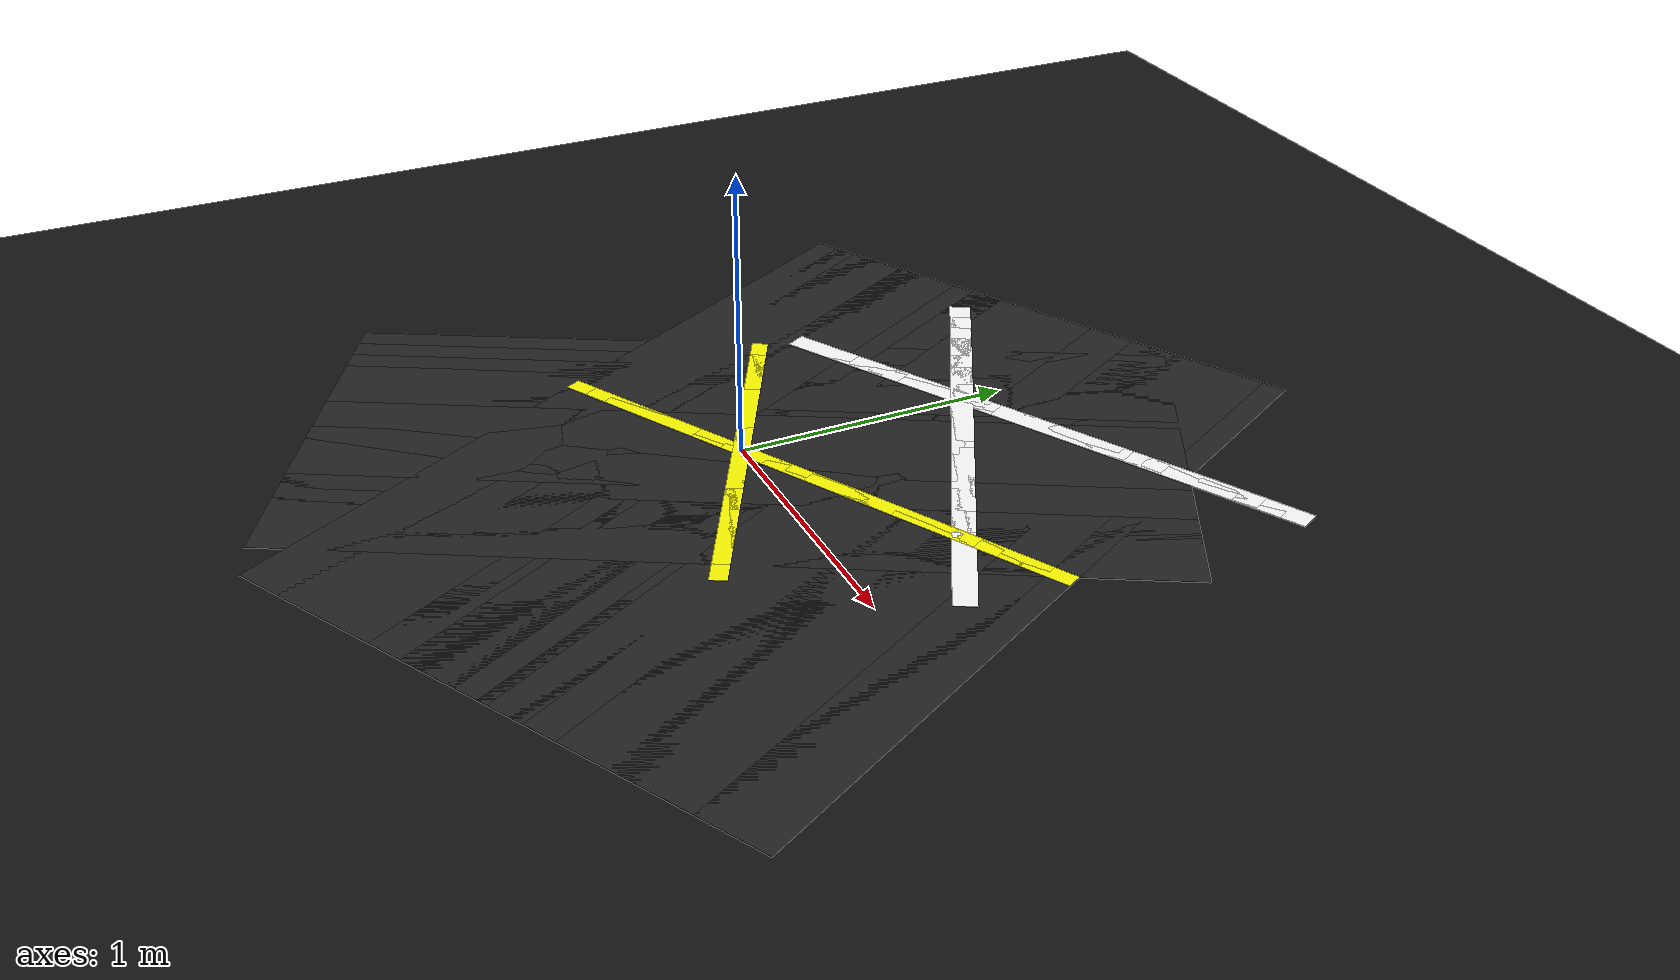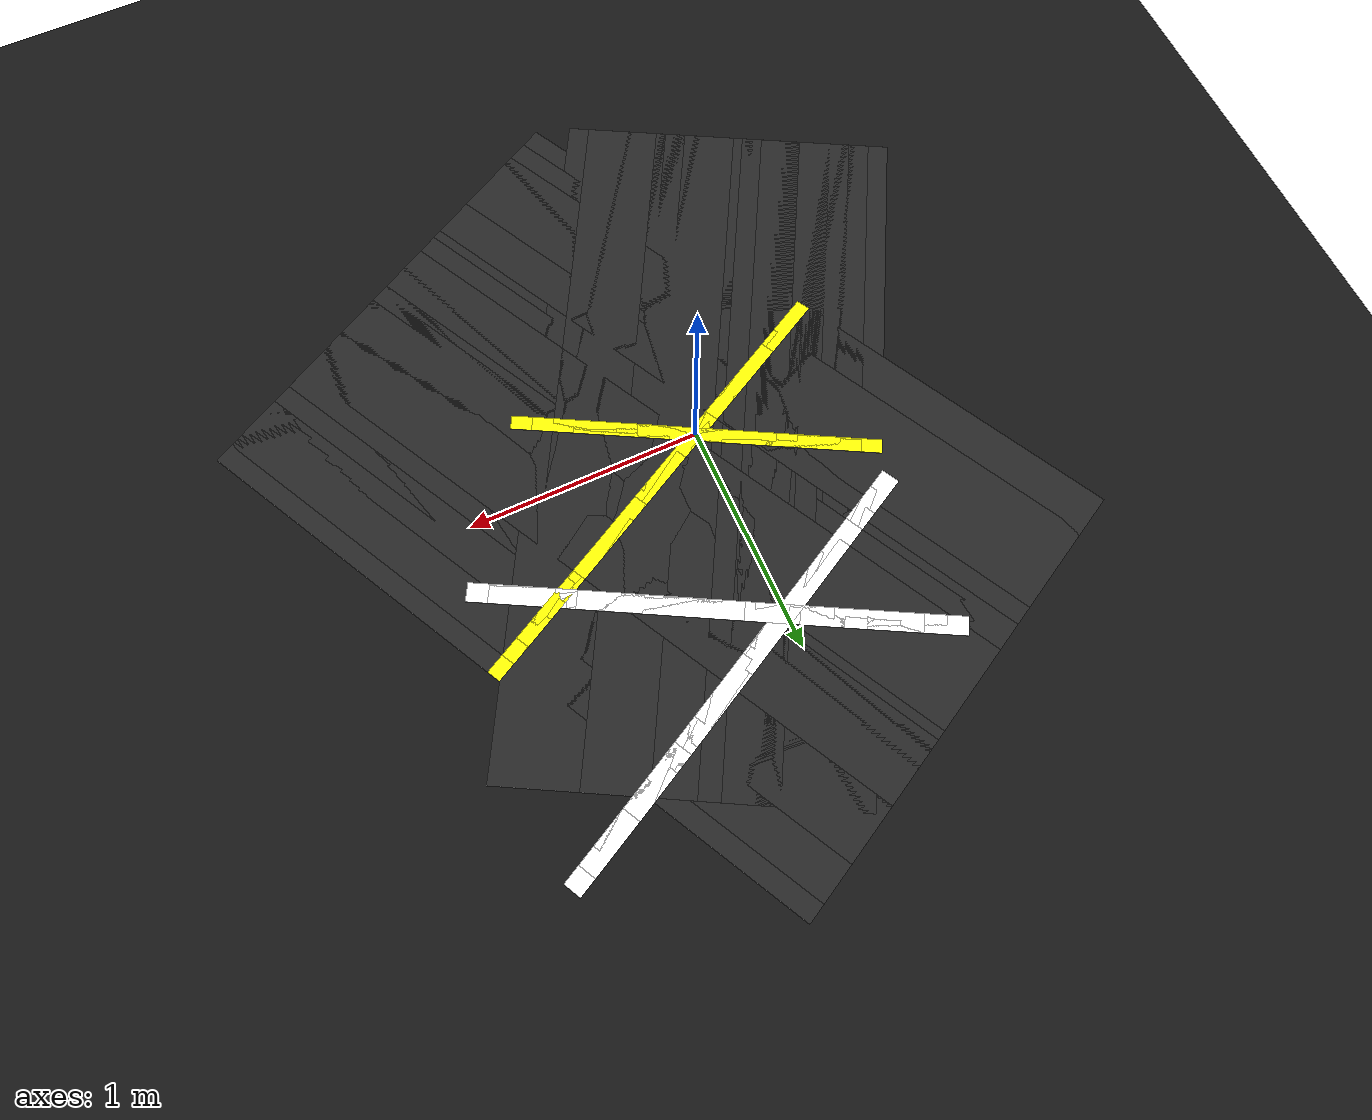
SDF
<sdf version="1.6">
 <world name="figure8_world">
  <model name="ground_plane">
   <static>true</static>
   <link name="link">
    <collision name="collision">
     <geometry><plane><normal>0 0 1</normal><size>120 120</size></plane></geometry>
    </collision>
    <visual name="visual">
     <geometry><plane><normal>0 0 1</normal><size>120 120</size></plane></geometry>
     <material><ambient>0.08 0.08 0.08 1</ambient><diffuse>0.08 0.08 0.08 1</diffuse></material>
    </visual>
   </link>
  </model>
  <model name="seg_01645">
   <static>true</static>
   <pose>-0.4565 1.0998 0.0030 0 0 -0.4920</pose>
   <link name="link">
    <collision name="collision"><geometry><box><size>0.4000 0.0800 0.002</size></box></geometry></collision>
    <visual name="visual">
     <geometry><box><size>0.4000 0.0800 0.002</size></box></geometry>
     <material><ambient>1 1 1 1</ambient><diffuse>1 1 1 1</diffuse></material>
    </visual>
   </link>
  </model>
  <model name="seg_01649">
   <static>true</static>
   <pose>-0.3791 1.0583 0.0030 0 0 -0.4930</pose>
   <link name="link">
    <collision name="collision"><geometry><box><size>0.4000 0.0800 0.002</size></box></geometry></collision>
    <visual name="visual">
     <geometry><box><size>0.4000 0.0800 0.002</size></box></geometry>
     <material><ambient>1 1 1 1</ambient><diffuse>1 1 1 1</diffuse></material>
    </visual>
   </link>
  </model>
  <model name="seg_01653">
   <static>true</static>
   <pose>-0.3017 1.0166 0.0030 0 0 -0.4940</pose>
   <link name="link">
    <collision name="collision"><geometry><box><size>0.4000 0.0800 0.002</size></box></geometry></collision>
    <visual name="visual">
     <geometry><box><size>0.4000 0.0800 0.002</size></box></geometry>
     <material><ambient>1 1 1 1</ambient><diffuse>1 1 1 1</diffuse></material>
    </visual>
   </link>
  </model>
  <model name="seg_01657">
   <static>true</static>
   <pose>-0.2241 0.9748 0.0030 0 0 -0.4948</pose>
   <link name="link">
    <collision name="collision"><geometry><box><size>0.4000 0.0800 0.002</size></box></geometry></collision>
    <visual name="visual">
     <geometry><box><size>0.4000 0.0800 0.002</size></box></geometry>
     <material><ambient>1 1 1 1</ambient><diffuse>1 1 1 1</diffuse></material>
    </visual>
   </link>
  </model>
  <model name="seg_01660">
   <static>true</static>
   <pose>-0.5032 0.2730 0.0010 0 0 -0.4955</pose>
   <link name="link">
    <collision name="collision"><geometry><box><size>0.4000 3.0000 0.002</size></box></geometry></collision>
    <visual name="visual">
     <geometry><box><size>0.4000 3.0000 0.002</size></box></geometry>
     <material><ambient>0.14 0.14 0.14 1</ambient><diffuse>0.14 0.14 0.14 1</diffuse></material>
    </visual>
   </link>
  </model>
  <model name="seg_01661">
   <static>true</static>
   <pose>-0.1466 0.9328 0.0030 0 0 -0.4955</pose>
   <link name="link">
    <collision name="collision"><geometry><box><size>0.4000 0.0800 0.002</size></box></geometry></collision>
    <visual name="visual">
     <geometry><box><size>0.4000 0.0800 0.002</size></box></geometry>
     <material><ambient>1 1 1 1</ambient><diffuse>1 1 1 1</diffuse></material>
    </visual>
   </link>
  </model>
  <model name="seg_01663">
   <static>true</static>
   <pose>-0.5032 0.2730 0.0030 0 0 -0.4955</pose>
   <link name="link">
    <collision name="collision"><geometry><box><size>0.4000 0.0600 0.002</size></box></geometry></collision>
    <visual name="visual">
     <geometry><box><size>0.4000 0.0600 0.002</size></box></geometry>
     <material><ambient>1 1 0 1</ambient><diffuse>1 1 0 1</diffuse></material>
    </visual>
   </link>
  </model>
  <model name="seg_01664">
   <static>true</static>
   <pose>-0.4259 0.2312 0.0010 0 0 -0.4961</pose>
   <link name="link">
    <collision name="collision"><geometry><box><size>0.4000 3.0000 0.002</size></box></geometry></collision>
    <visual name="visual">
     <geometry><box><size>0.4000 3.0000 0.002</size></box></geometry>
     <material><ambient>0.14 0.14 0.14 1</ambient><diffuse>0.14 0.14 0.14 1</diffuse></material>
    </visual>
   </link>
  </model>
  <model name="seg_01665">
   <static>true</static>
   <pose>-0.0689 0.8908 0.0030 0 0 -0.4961</pose>
   <link name="link">
    <collision name="collision"><geometry><box><size>0.4000 0.0800 0.002</size></box></geometry></collision>
    <visual name="visual">
     <geometry><box><size>0.4000 0.0800 0.002</size></box></geometry>
     <material><ambient>1 1 1 1</ambient><diffuse>1 1 1 1</diffuse></material>
    </visual>
   </link>
  </model>
  <model name="seg_01667">
   <static>true</static>
   <pose>-0.4259 0.2312 0.0030 0 0 -0.4961</pose>
   <link name="link">
    <collision name="collision"><geometry><box><size>0.4000 0.0600 0.002</size></box></geometry></collision>
    <visual name="visual">
     <geometry><box><size>0.4000 0.0600 0.002</size></box></geometry>
     <material><ambient>1 1 0 1</ambient><diffuse>1 1 0 1</diffuse></material>
    </visual>
   </link>
  </model>
  <model name="seg_01668">
   <static>true</static>
   <pose>-0.3486 0.1893 0.0010 0 0 -0.4966</pose>
   <link name="link">
    <collision name="collision"><geometry><box><size>0.4000 3.0000 0.002</size></box></geometry></collision>
    <visual name="visual">
     <geometry><box><size>0.4000 3.0000 0.002</size></box></geometry>
     <material><ambient>0.14 0.14 0.14 1</ambient><diffuse>0.14 0.14 0.14 1</diffuse></material>
    </visual>
   </link>
  </model>
  <model name="seg_01669">
   <static>true</static>
   <pose>0.0087 0.8487 0.0030 0 0 -0.4966</pose>
   <link name="link">
    <collision name="collision"><geometry><box><size>0.4000 0.0800 0.002</size></box></geometry></collision>
    <visual name="visual">
     <geometry><box><size>0.4000 0.0800 0.002</size></box></geometry>
     <material><ambient>1 1 1 1</ambient><diffuse>1 1 1 1</diffuse></material>
    </visual>
   </link>
  </model>
  <model name="seg_01671">
   <static>true</static>
   <pose>-0.3486 0.1893 0.0030 0 0 -0.4966</pose>
   <link name="link">
    <collision name="collision"><geometry><box><size>0.4000 0.0600 0.002</size></box></geometry></collision>
    <visual name="visual">
     <geometry><box><size>0.4000 0.0600 0.002</size></box></geometry>
     <material><ambient>1 1 0 1</ambient><diffuse>1 1 0 1</diffuse></material>
    </visual>
   </link>
  </model>
  <model name="seg_01672">
   <static>true</static>
   <pose>-0.2712 0.1473 0.0010 0 0 -0.4971</pose>
   <link name="link">
    <collision name="collision"><geometry><box><size>0.4000 3.0000 0.002</size></box></geometry></collision>
    <visual name="visual">
     <geometry><box><size>0.4000 3.0000 0.002</size></box></geometry>
     <material><ambient>0.14 0.14 0.14 1</ambient><diffuse>0.14 0.14 0.14 1</diffuse></material>
    </visual>
   </link>
  </model>
  <model name="seg_01673">
   <static>true</static>
   <pose>0.0864 0.8066 0.0030 0 0 -0.4971</pose>
   <link name="link">
    <collision name="collision"><geometry><box><size>0.4000 0.0800 0.002</size></box></geometry></collision>
    <visual name="visual">
     <geometry><box><size>0.4000 0.0800 0.002</size></box></geometry>
     <material><ambient>1 1 1 1</ambient><diffuse>1 1 1 1</diffuse></material>
    </visual>
   </link>
  </model>
  <model name="seg_01675">
   <static>true</static>
   <pose>-0.2712 0.1473 0.0030 0 0 -0.4971</pose>
   <link name="link">
    <collision name="collision"><geometry><box><size>0.4000 0.0600 0.002</size></box></geometry></collision>
    <visual name="visual">
     <geometry><box><size>0.4000 0.0600 0.002</size></box></geometry>
     <material><ambient>1 1 0 1</ambient><diffuse>1 1 0 1</diffuse></material>
    </visual>
   </link>
  </model>
  <model name="seg_01676">
   <static>true</static>
   <pose>-0.1938 0.1053 0.0010 0 0 -0.4974</pose>
   <link name="link">
    <collision name="collision"><geometry><box><size>0.4000 3.0000 0.002</size></box></geometry></collision>
    <visual name="visual">
     <geometry><box><size>0.4000 3.0000 0.002</size></box></geometry>
     <material><ambient>0.14 0.14 0.14 1</ambient><diffuse>0.14 0.14 0.14 1</diffuse></material>
    </visual>
   </link>
  </model>
  <model name="seg_01677">
   <static>true</static>
   <pose>0.1641 0.7644 0.0030 0 0 -0.4974</pose>
   <link name="link">
    <collision name="collision"><geometry><box><size>0.4000 0.0800 0.002</size></box></geometry></collision>
    <visual name="visual">
     <geometry><box><size>0.4000 0.0800 0.002</size></box></geometry>
     <material><ambient>1 1 1 1</ambient><diffuse>1 1 1 1</diffuse></material>
    </visual>
   </link>
  </model>
  <model name="seg_01679">
   <static>true</static>
   <pose>-0.1938 0.1053 0.0030 0 0 -0.4974</pose>
   <link name="link">
    <collision name="collision"><geometry><box><size>0.4000 0.0600 0.002</size></box></geometry></collision>
    <visual name="visual">
     <geometry><box><size>0.4000 0.0600 0.002</size></box></geometry>
     <material><ambient>1 1 0 1</ambient><diffuse>1 1 0 1</diffuse></material>
    </visual>
   </link>
  </model>
  <model name="seg_01680">
   <static>true</static>
   <pose>-0.1163 0.0632 0.0010 0 0 -0.4976</pose>
   <link name="link">
    <collision name="collision"><geometry><box><size>0.4000 3.0000 0.002</size></box></geometry></collision>
    <visual name="visual">
     <geometry><box><size>0.4000 3.0000 0.002</size></box></geometry>
     <material><ambient>0.14 0.14 0.14 1</ambient><diffuse>0.14 0.14 0.14 1</diffuse></material>
    </visual>
   </link>
  </model>
  <model name="seg_01681">
   <static>true</static>
   <pose>0.2417 0.7222 0.0030 0 0 -0.4976</pose>
   <link name="link">
    <collision name="collision"><geometry><box><size>0.4000 0.0800 0.002</size></box></geometry></collision>
    <visual name="visual">
     <geometry><box><size>0.4000 0.0800 0.002</size></box></geometry>
     <material><ambient>1 1 1 1</ambient><diffuse>1 1 1 1</diffuse></material>
    </visual>
   </link>
  </model>
  <model name="seg_01683">
   <static>true</static>
   <pose>-0.1163 0.0632 0.0030 0 0 -0.4976</pose>
   <link name="link">
    <collision name="collision"><geometry><box><size>0.4000 0.0600 0.002</size></box></geometry></collision>
    <visual name="visual">
     <geometry><box><size>0.4000 0.0600 0.002</size></box></geometry>
     <material><ambient>1 1 0 1</ambient><diffuse>1 1 0 1</diffuse></material>
    </visual>
   </link>
  </model>
  <model name="seg_01684">
   <static>true</static>
   <pose>-0.0388 0.0211 0.0010 0 0 -0.4978</pose>
   <link name="link">
    <collision name="collision"><geometry><box><size>0.4000 3.0000 0.002</size></box></geometry></collision>
    <visual name="visual">
     <geometry><box><size>0.4000 3.0000 0.002</size></box></geometry>
     <material><ambient>0.14 0.14 0.14 1</ambient><diffuse>0.14 0.14 0.14 1</diffuse></material>
    </visual>
   </link>
  </model>
  <model name="seg_01685">
   <static>true</static>
   <pose>0.3193 0.6801 0.0030 0 0 -0.4978</pose>
   <link name="link">
    <collision name="collision"><geometry><box><size>0.4000 0.0800 0.002</size></box></geometry></collision>
    <visual name="visual">
     <geometry><box><size>0.4000 0.0800 0.002</size></box></geometry>
     <material><ambient>1 1 1 1</ambient><diffuse>1 1 1 1</diffuse></material>
    </visual>
   </link>
  </model>
  <model name="seg_01687">
   <static>true</static>
   <pose>-0.0388 0.0211 0.0030 0 0 -0.4978</pose>
   <link name="link">
    <collision name="collision"><geometry><box><size>0.4000 0.0600 0.002</size></box></geometry></collision>
    <visual name="visual">
     <geometry><box><size>0.4000 0.0600 0.002</size></box></geometry>
     <material><ambient>1 1 0 1</ambient><diffuse>1 1 0 1</diffuse></material>
    </visual>
   </link>
  </model>
  <model name="seg_01688">
   <static>true</static>
   <pose>0.0388 -0.0211 0.0010 0 0 -0.4978</pose>
   <link name="link">
    <collision name="collision"><geometry><box><size>0.4000 3.0000 0.002</size></box></geometry></collision>
    <visual name="visual">
     <geometry><box><size>0.4000 3.0000 0.002</size></box></geometry>
     <material><ambient>0.14 0.14 0.14 1</ambient><diffuse>0.14 0.14 0.14 1</diffuse></material>
    </visual>
   </link>
  </model>
  <model name="seg_01689">
   <static>true</static>
   <pose>0.3969 0.6379 0.0030 0 0 -0.4978</pose>
   <link name="link">
    <collision name="collision"><geometry><box><size>0.4000 0.0800 0.002</size></box></geometry></collision>
    <visual name="visual">
     <geometry><box><size>0.4000 0.0800 0.002</size></box></geometry>
     <material><ambient>1 1 1 1</ambient><diffuse>1 1 1 1</diffuse></material>
    </visual>
   </link>
  </model>
  <model name="seg_01691">
   <static>true</static>
   <pose>0.0388 -0.0211 0.0030 0 0 -0.4978</pose>
   <link name="link">
    <collision name="collision"><geometry><box><size>0.4000 0.0600 0.002</size></box></geometry></collision>
    <visual name="visual">
     <geometry><box><size>0.4000 0.0600 0.002</size></box></geometry>
     <material><ambient>1 1 0 1</ambient><diffuse>1 1 0 1</diffuse></material>
    </visual>
   </link>
  </model>
  <model name="seg_01692">
   <static>true</static>
   <pose>0.1163 -0.0632 0.0010 0 0 -0.4978</pose>
   <link name="link">
    <collision name="collision"><geometry><box><size>0.4000 3.0000 0.002</size></box></geometry></collision>
    <visual name="visual">
     <geometry><box><size>0.4000 3.0000 0.002</size></box></geometry>
     <material><ambient>0.14 0.14 0.14 1</ambient><diffuse>0.14 0.14 0.14 1</diffuse></material>
    </visual>
   </link>
  </model>
  <model name="seg_01693">
   <static>true</static>
   <pose>0.4744 0.5958 0.0030 0 0 -0.4978</pose>
   <link name="link">
    <collision name="collision"><geometry><box><size>0.4000 0.0800 0.002</size></box></geometry></collision>
    <visual name="visual">
     <geometry><box><size>0.4000 0.0800 0.002</size></box></geometry>
     <material><ambient>1 1 1 1</ambient><diffuse>1 1 1 1</diffuse></material>
    </visual>
   </link>
  </model>
  <model name="seg_01695">
   <static>true</static>
   <pose>0.1163 -0.0632 0.0030 0 0 -0.4978</pose>
   <link name="link">
    <collision name="collision"><geometry><box><size>0.4000 0.0600 0.002</size></box></geometry></collision>
    <visual name="visual">
     <geometry><box><size>0.4000 0.0600 0.002</size></box></geometry>
     <material><ambient>1 1 0 1</ambient><diffuse>1 1 0 1</diffuse></material>
    </visual>
   </link>
  </model>
  <model name="seg_01696">
   <static>true</static>
   <pose>0.1938 -0.1053 0.0010 0 0 -0.4976</pose>
   <link name="link">
    <collision name="collision"><geometry><box><size>0.4000 3.0000 0.002</size></box></geometry></collision>
    <visual name="visual">
     <geometry><box><size>0.4000 3.0000 0.002</size></box></geometry>
     <material><ambient>0.14 0.14 0.14 1</ambient><diffuse>0.14 0.14 0.14 1</diffuse></material>
    </visual>
   </link>
  </model>
  <model name="seg_01697">
   <static>true</static>
   <pose>0.5518 0.5537 0.0030 0 0 -0.4976</pose>
   <link name="link">
    <collision name="collision"><geometry><box><size>0.4000 0.0800 0.002</size></box></geometry></collision>
    <visual name="visual">
     <geometry><box><size>0.4000 0.0800 0.002</size></box></geometry>
     <material><ambient>1 1 1 1</ambient><diffuse>1 1 1 1</diffuse></material>
    </visual>
   </link>
  </model>
  <model name="seg_01699">
   <static>true</static>
   <pose>0.1938 -0.1053 0.0030 0 0 -0.4976</pose>
   <link name="link">
    <collision name="collision"><geometry><box><size>0.4000 0.0600 0.002</size></box></geometry></collision>
    <visual name="visual">
     <geometry><box><size>0.4000 0.0600 0.002</size></box></geometry>
     <material><ambient>1 1 0 1</ambient><diffuse>1 1 0 1</diffuse></material>
    </visual>
   </link>
  </model>
  <model name="seg_01700">
   <static>true</static>
   <pose>0.2712 -0.1473 0.0010 0 0 -0.4974</pose>
   <link name="link">
    <collision name="collision"><geometry><box><size>0.4000 3.0000 0.002</size></box></geometry></collision>
    <visual name="visual">
     <geometry><box><size>0.4000 3.0000 0.002</size></box></geometry>
     <material><ambient>0.14 0.14 0.14 1</ambient><diffuse>0.14 0.14 0.14 1</diffuse></material>
    </visual>
   </link>
  </model>
  <model name="seg_01701">
   <static>true</static>
   <pose>0.6291 0.5118 0.0030 0 0 -0.4974</pose>
   <link name="link">
    <collision name="collision"><geometry><box><size>0.4000 0.0800 0.002</size></box></geometry></collision>
    <visual name="visual">
     <geometry><box><size>0.4000 0.0800 0.002</size></box></geometry>
     <material><ambient>1 1 1 1</ambient><diffuse>1 1 1 1</diffuse></material>
    </visual>
   </link>
  </model>
  <model name="seg_01703">
   <static>true</static>
   <pose>0.2712 -0.1473 0.0030 0 0 -0.4974</pose>
   <link name="link">
    <collision name="collision"><geometry><box><size>0.4000 0.0600 0.002</size></box></geometry></collision>
    <visual name="visual">
     <geometry><box><size>0.4000 0.0600 0.002</size></box></geometry>
     <material><ambient>1 1 0 1</ambient><diffuse>1 1 0 1</diffuse></material>
    </visual>
   </link>
  </model>
  <model name="seg_01704">
   <static>true</static>
   <pose>0.3486 -0.1893 0.0010 0 0 -0.4971</pose>
   <link name="link">
    <collision name="collision"><geometry><box><size>0.4000 3.0000 0.002</size></box></geometry></collision>
    <visual name="visual">
     <geometry><box><size>0.4000 3.0000 0.002</size></box></geometry>
     <material><ambient>0.14 0.14 0.14 1</ambient><diffuse>0.14 0.14 0.14 1</diffuse></material>
    </visual>
   </link>
  </model>
  <model name="seg_01705">
   <static>true</static>
   <pose>0.7063 0.4699 0.0030 0 0 -0.4971</pose>
   <link name="link">
    <collision name="collision"><geometry><box><size>0.4000 0.0800 0.002</size></box></geometry></collision>
    <visual name="visual">
     <geometry><box><size>0.4000 0.0800 0.002</size></box></geometry>
     <material><ambient>1 1 1 1</ambient><diffuse>1 1 1 1</diffuse></material>
    </visual>
   </link>
  </model>
  <model name="seg_01707">
   <static>true</static>
   <pose>0.3486 -0.1893 0.0030 0 0 -0.4971</pose>
   <link name="link">
    <collision name="collision"><geometry><box><size>0.4000 0.0600 0.002</size></box></geometry></collision>
    <visual name="visual">
     <geometry><box><size>0.4000 0.0600 0.002</size></box></geometry>
     <material><ambient>1 1 0 1</ambient><diffuse>1 1 0 1</diffuse></material>
    </visual>
   </link>
  </model>
  <model name="seg_01708">
   <static>true</static>
   <pose>0.4259 -0.2312 0.0010 0 0 -0.4966</pose>
   <link name="link">
    <collision name="collision"><geometry><box><size>0.4000 3.0000 0.002</size></box></geometry></collision>
    <visual name="visual">
     <geometry><box><size>0.4000 3.0000 0.002</size></box></geometry>
     <material><ambient>0.14 0.14 0.14 1</ambient><diffuse>0.14 0.14 0.14 1</diffuse></material>
    </visual>
   </link>
  </model>
  <model name="seg_01709">
   <static>true</static>
   <pose>0.7833 0.4282 0.0030 0 0 -0.4966</pose>
   <link name="link">
    <collision name="collision"><geometry><box><size>0.4000 0.0800 0.002</size></box></geometry></collision>
    <visual name="visual">
     <geometry><box><size>0.4000 0.0800 0.002</size></box></geometry>
     <material><ambient>1 1 1 1</ambient><diffuse>1 1 1 1</diffuse></material>
    </visual>
   </link>
  </model>
  <model name="seg_01711">
   <static>true</static>
   <pose>0.4259 -0.2312 0.0030 0 0 -0.4966</pose>
   <link name="link">
    <collision name="collision"><geometry><box><size>0.4000 0.0600 0.002</size></box></geometry></collision>
    <visual name="visual">
     <geometry><box><size>0.4000 0.0600 0.002</size></box></geometry>
     <material><ambient>1 1 0 1</ambient><diffuse>1 1 0 1</diffuse></material>
    </visual>
   </link>
  </model>
  <model name="seg_01713">
   <static>true</static>
   <pose>0.8602 0.3866 0.0030 0 0 -0.4961</pose>
   <link name="link">
    <collision name="collision"><geometry><box><size>0.4000 0.0800 0.002</size></box></geometry></collision>
    <visual name="visual">
     <geometry><box><size>0.4000 0.0800 0.002</size></box></geometry>
     <material><ambient>1 1 1 1</ambient><diffuse>1 1 1 1</diffuse></material>
    </visual>
   </link>
  </model>
  <model name="seg_01715">
   <static>true</static>
   <pose>0.5032 -0.2730 0.0030 0 0 -0.4961</pose>
   <link name="link">
    <collision name="collision"><geometry><box><size>0.4000 0.0600 0.002</size></box></geometry></collision>
    <visual name="visual">
     <geometry><box><size>0.4000 0.0600 0.002</size></box></geometry>
     <material><ambient>1 1 0 1</ambient><diffuse>1 1 0 1</diffuse></material>
    </visual>
   </link>
  </model>
  <model name="seg_01717">
   <static>true</static>
   <pose>0.9369 0.3451 0.0030 0 0 -0.4955</pose>
   <link name="link">
    <collision name="collision"><geometry><box><size>0.4000 0.0800 0.002</size></box></geometry></collision>
    <visual name="visual">
     <geometry><box><size>0.4000 0.0800 0.002</size></box></geometry>
     <material><ambient>1 1 1 1</ambient><diffuse>1 1 1 1</diffuse></material>
    </visual>
   </link>
  </model>
  <model name="seg_02016">
   <static>true</static>
   <pose>-0.5032 -0.2730 0.0010 0 0 0.4955</pose>
   <link name="link">
    <collision name="collision"><geometry><box><size>0.4000 3.0000 0.002</size></box></geometry></collision>
    <visual name="visual">
     <geometry><box><size>0.4000 3.0000 0.002</size></box></geometry>
     <material><ambient>0.14 0.14 0.14 1</ambient><diffuse>0.14 0.14 0.14 1</diffuse></material>
    </visual>
   </link>
  </model>
  <model name="seg_02019">
   <static>true</static>
   <pose>-0.5032 -0.2730 0.0030 0 0 0.4955</pose>
   <link name="link">
    <collision name="collision"><geometry><box><size>0.4000 0.0600 0.002</size></box></geometry></collision>
    <visual name="visual">
     <geometry><box><size>0.4000 0.0600 0.002</size></box></geometry>
     <material><ambient>1 1 0 1</ambient><diffuse>1 1 0 1</diffuse></material>
    </visual>
   </link>
  </model>
  <model name="seg_02020">
   <static>true</static>
   <pose>-0.4259 -0.2312 0.0010 0 0 0.4961</pose>
   <link name="link">
    <collision name="collision"><geometry><box><size>0.4000 3.0000 0.002</size></box></geometry></collision>
    <visual name="visual">
     <geometry><box><size>0.4000 3.0000 0.002</size></box></geometry>
     <material><ambient>0.14 0.14 0.14 1</ambient><diffuse>0.14 0.14 0.14 1</diffuse></material>
    </visual>
   </link>
  </model>
  <model name="seg_02023">
   <static>true</static>
   <pose>-0.4259 -0.2312 0.0030 0 0 0.4961</pose>
   <link name="link">
    <collision name="collision"><geometry><box><size>0.4000 0.0600 0.002</size></box></geometry></collision>
    <visual name="visual">
     <geometry><box><size>0.4000 0.0600 0.002</size></box></geometry>
     <material><ambient>1 1 0 1</ambient><diffuse>1 1 0 1</diffuse></material>
    </visual>
   </link>
  </model>
  <model name="seg_02024">
   <static>true</static>
   <pose>-0.3486 -0.1893 0.0010 0 0 0.4966</pose>
   <link name="link">
    <collision name="collision"><geometry><box><size>0.4000 3.0000 0.002</size></box></geometry></collision>
    <visual name="visual">
     <geometry><box><size>0.4000 3.0000 0.002</size></box></geometry>
     <material><ambient>0.14 0.14 0.14 1</ambient><diffuse>0.14 0.14 0.14 1</diffuse></material>
    </visual>
   </link>
  </model>
  <model name="seg_02027">
   <static>true</static>
   <pose>-0.3486 -0.1893 0.0030 0 0 0.4966</pose>
   <link name="link">
    <collision name="collision"><geometry><box><size>0.4000 0.0600 0.002</size></box></geometry></collision>
    <visual name="visual">
     <geometry><box><size>0.4000 0.0600 0.002</size></box></geometry>
     <material><ambient>1 1 0 1</ambient><diffuse>1 1 0 1</diffuse></material>
    </visual>
   </link>
  </model>
  <model name="seg_02028">
   <static>true</static>
   <pose>-0.2712 -0.1473 0.0010 0 0 0.4971</pose>
   <link name="link">
    <collision name="collision"><geometry><box><size>0.4000 3.0000 0.002</size></box></geometry></collision>
    <visual name="visual">
     <geometry><box><size>0.4000 3.0000 0.002</size></box></geometry>
     <material><ambient>0.14 0.14 0.14 1</ambient><diffuse>0.14 0.14 0.14 1</diffuse></material>
    </visual>
   </link>
  </model>
  <model name="seg_02031">
   <static>true</static>
   <pose>-0.2712 -0.1473 0.0030 0 0 0.4971</pose>
   <link name="link">
    <collision name="collision"><geometry><box><size>0.4000 0.0600 0.002</size></box></geometry></collision>
    <visual name="visual">
     <geometry><box><size>0.4000 0.0600 0.002</size></box></geometry>
     <material><ambient>1 1 0 1</ambient><diffuse>1 1 0 1</diffuse></material>
    </visual>
   </link>
  </model>
  <model name="seg_02032">
   <static>true</static>
   <pose>-0.1938 -0.1053 0.0010 0 0 0.4974</pose>
   <link name="link">
    <collision name="collision"><geometry><box><size>0.4000 3.0000 0.002</size></box></geometry></collision>
    <visual name="visual">
     <geometry><box><size>0.4000 3.0000 0.002</size></box></geometry>
     <material><ambient>0.14 0.14 0.14 1</ambient><diffuse>0.14 0.14 0.14 1</diffuse></material>
    </visual>
   </link>
  </model>
  <model name="seg_02035">
   <static>true</static>
   <pose>-0.1938 -0.1053 0.0030 0 0 0.4974</pose>
   <link name="link">
    <collision name="collision"><geometry><box><size>0.4000 0.0600 0.002</size></box></geometry></collision>
    <visual name="visual">
     <geometry><box><size>0.4000 0.0600 0.002</size></box></geometry>
     <material><ambient>1 1 0 1</ambient><diffuse>1 1 0 1</diffuse></material>
    </visual>
   </link>
  </model>
  <model name="seg_02036">
   <static>true</static>
   <pose>-0.1163 -0.0632 0.0010 0 0 0.4976</pose>
   <link name="link">
    <collision name="collision"><geometry><box><size>0.4000 3.0000 0.002</size></box></geometry></collision>
    <visual name="visual">
     <geometry><box><size>0.4000 3.0000 0.002</size></box></geometry>
     <material><ambient>0.14 0.14 0.14 1</ambient><diffuse>0.14 0.14 0.14 1</diffuse></material>
    </visual>
   </link>
  </model>
  <model name="seg_02037">
   <static>true</static>
   <pose>-0.4743 0.5958 0.0030 0 0 0.4976</pose>
   <link name="link">
    <collision name="collision"><geometry><box><size>0.4000 0.0800 0.002</size></box></geometry></collision>
    <visual name="visual">
     <geometry><box><size>0.4000 0.0800 0.002</size></box></geometry>
     <material><ambient>1 1 1 1</ambient><diffuse>1 1 1 1</diffuse></material>
    </visual>
   </link>
  </model>
  <model name="seg_02039">
   <static>true</static>
   <pose>-0.1163 -0.0632 0.0030 0 0 0.4976</pose>
   <link name="link">
    <collision name="collision"><geometry><box><size>0.4000 0.0600 0.002</size></box></geometry></collision>
    <visual name="visual">
     <geometry><box><size>0.4000 0.0600 0.002</size></box></geometry>
     <material><ambient>1 1 0 1</ambient><diffuse>1 1 0 1</diffuse></material>
    </visual>
   </link>
  </model>
  <model name="seg_02040">
   <static>true</static>
   <pose>-0.0388 -0.0211 0.0010 0 0 0.4978</pose>
   <link name="link">
    <collision name="collision"><geometry><box><size>0.4000 3.0000 0.002</size></box></geometry></collision>
    <visual name="visual">
     <geometry><box><size>0.4000 3.0000 0.002</size></box></geometry>
     <material><ambient>0.14 0.14 0.14 1</ambient><diffuse>0.14 0.14 0.14 1</diffuse></material>
    </visual>
   </link>
  </model>
  <model name="seg_02041">
   <static>true</static>
   <pose>-0.3969 0.6379 0.0030 0 0 0.4978</pose>
   <link name="link">
    <collision name="collision"><geometry><box><size>0.4000 0.0800 0.002</size></box></geometry></collision>
    <visual name="visual">
     <geometry><box><size>0.4000 0.0800 0.002</size></box></geometry>
     <material><ambient>1 1 1 1</ambient><diffuse>1 1 1 1</diffuse></material>
    </visual>
   </link>
  </model>
  <model name="seg_02043">
   <static>true</static>
   <pose>-0.0388 -0.0211 0.0030 0 0 0.4978</pose>
   <link name="link">
    <collision name="collision"><geometry><box><size>0.4000 0.0600 0.002</size></box></geometry></collision>
    <visual name="visual">
     <geometry><box><size>0.4000 0.0600 0.002</size></box></geometry>
     <material><ambient>1 1 0 1</ambient><diffuse>1 1 0 1</diffuse></material>
    </visual>
   </link>
  </model>
  <model name="seg_02044">
   <static>true</static>
   <pose>0.0388 0.0211 0.0010 0 0 0.4978</pose>
   <link name="link">
    <collision name="collision"><geometry><box><size>0.4000 3.0000 0.002</size></box></geometry></collision>
    <visual name="visual">
     <geometry><box><size>0.4000 3.0000 0.002</size></box></geometry>
     <material><ambient>0.14 0.14 0.14 1</ambient><diffuse>0.14 0.14 0.14 1</diffuse></material>
    </visual>
   </link>
  </model>
  <model name="seg_02045">
   <static>true</static>
   <pose>-0.3194 0.6800 0.0030 0 0 0.4978</pose>
   <link name="link">
    <collision name="collision"><geometry><box><size>0.4000 0.0800 0.002</size></box></geometry></collision>
    <visual name="visual">
     <geometry><box><size>0.4000 0.0800 0.002</size></box></geometry>
     <material><ambient>1 1 1 1</ambient><diffuse>1 1 1 1</diffuse></material>
    </visual>
   </link>
  </model>
  <model name="seg_02047">
   <static>true</static>
   <pose>0.0388 0.0211 0.0030 0 0 0.4978</pose>
   <link name="link">
    <collision name="collision"><geometry><box><size>0.4000 0.0600 0.002</size></box></geometry></collision>
    <visual name="visual">
     <geometry><box><size>0.4000 0.0600 0.002</size></box></geometry>
     <material><ambient>1 1 0 1</ambient><diffuse>1 1 0 1</diffuse></material>
    </visual>
   </link>
  </model>
  <model name="seg_02048">
   <static>true</static>
   <pose>0.1163 0.0632 0.0010 0 0 0.4978</pose>
   <link name="link">
    <collision name="collision"><geometry><box><size>0.4000 3.0000 0.002</size></box></geometry></collision>
    <visual name="visual">
     <geometry><box><size>0.4000 3.0000 0.002</size></box></geometry>
     <material><ambient>0.14 0.14 0.14 1</ambient><diffuse>0.14 0.14 0.14 1</diffuse></material>
    </visual>
   </link>
  </model>
  <model name="seg_02049">
   <static>true</static>
   <pose>-0.2418 0.7222 0.0030 0 0 0.4978</pose>
   <link name="link">
    <collision name="collision"><geometry><box><size>0.4000 0.0800 0.002</size></box></geometry></collision>
    <visual name="visual">
     <geometry><box><size>0.4000 0.0800 0.002</size></box></geometry>
     <material><ambient>1 1 1 1</ambient><diffuse>1 1 1 1</diffuse></material>
    </visual>
   </link>
  </model>
  <model name="seg_02051">
   <static>true</static>
   <pose>0.1163 0.0632 0.0030 0 0 0.4978</pose>
   <link name="link">
    <collision name="collision"><geometry><box><size>0.4000 0.0600 0.002</size></box></geometry></collision>
    <visual name="visual">
     <geometry><box><size>0.4000 0.0600 0.002</size></box></geometry>
     <material><ambient>1 1 0 1</ambient><diffuse>1 1 0 1</diffuse></material>
    </visual>
   </link>
  </model>
  <model name="seg_02052">
   <static>true</static>
   <pose>0.1938 0.1053 0.0010 0 0 0.4976</pose>
   <link name="link">
    <collision name="collision"><geometry><box><size>0.4000 3.0000 0.002</size></box></geometry></collision>
    <visual name="visual">
     <geometry><box><size>0.4000 3.0000 0.002</size></box></geometry>
     <material><ambient>0.14 0.14 0.14 1</ambient><diffuse>0.14 0.14 0.14 1</diffuse></material>
    </visual>
   </link>
  </model>
  <model name="seg_02053">
   <static>true</static>
   <pose>-0.1642 0.7643 0.0030 0 0 0.4976</pose>
   <link name="link">
    <collision name="collision"><geometry><box><size>0.4000 0.0800 0.002</size></box></geometry></collision>
    <visual name="visual">
     <geometry><box><size>0.4000 0.0800 0.002</size></box></geometry>
     <material><ambient>1 1 1 1</ambient><diffuse>1 1 1 1</diffuse></material>
    </visual>
   </link>
  </model>
  <model name="seg_02055">
   <static>true</static>
   <pose>0.1938 0.1053 0.0030 0 0 0.4976</pose>
   <link name="link">
    <collision name="collision"><geometry><box><size>0.4000 0.0600 0.002</size></box></geometry></collision>
    <visual name="visual">
     <geometry><box><size>0.4000 0.0600 0.002</size></box></geometry>
     <material><ambient>1 1 0 1</ambient><diffuse>1 1 0 1</diffuse></material>
    </visual>
   </link>
  </model>
  <model name="seg_02056">
   <static>true</static>
   <pose>0.2712 0.1473 0.0010 0 0 0.4974</pose>
   <link name="link">
    <collision name="collision"><geometry><box><size>0.4000 3.0000 0.002</size></box></geometry></collision>
    <visual name="visual">
     <geometry><box><size>0.4000 3.0000 0.002</size></box></geometry>
     <material><ambient>0.14 0.14 0.14 1</ambient><diffuse>0.14 0.14 0.14 1</diffuse></material>
    </visual>
   </link>
  </model>
  <model name="seg_02057">
   <static>true</static>
   <pose>-0.0866 0.8065 0.0030 0 0 0.4974</pose>
   <link name="link">
    <collision name="collision"><geometry><box><size>0.4000 0.0800 0.002</size></box></geometry></collision>
    <visual name="visual">
     <geometry><box><size>0.4000 0.0800 0.002</size></box></geometry>
     <material><ambient>1 1 1 1</ambient><diffuse>1 1 1 1</diffuse></material>
    </visual>
   </link>
  </model>
  <model name="seg_02059">
   <static>true</static>
   <pose>0.2712 0.1473 0.0030 0 0 0.4974</pose>
   <link name="link">
    <collision name="collision"><geometry><box><size>0.4000 0.0600 0.002</size></box></geometry></collision>
    <visual name="visual">
     <geometry><box><size>0.4000 0.0600 0.002</size></box></geometry>
     <material><ambient>1 1 0 1</ambient><diffuse>1 1 0 1</diffuse></material>
    </visual>
   </link>
  </model>
  <model name="seg_02060">
   <static>true</static>
   <pose>0.3486 0.1893 0.0010 0 0 0.4971</pose>
   <link name="link">
    <collision name="collision"><geometry><box><size>0.4000 3.0000 0.002</size></box></geometry></collision>
    <visual name="visual">
     <geometry><box><size>0.4000 3.0000 0.002</size></box></geometry>
     <material><ambient>0.14 0.14 0.14 1</ambient><diffuse>0.14 0.14 0.14 1</diffuse></material>
    </visual>
   </link>
  </model>
  <model name="seg_02061">
   <static>true</static>
   <pose>-0.0090 0.8486 0.0030 0 0 0.4971</pose>
   <link name="link">
    <collision name="collision"><geometry><box><size>0.4000 0.0800 0.002</size></box></geometry></collision>
    <visual name="visual">
     <geometry><box><size>0.4000 0.0800 0.002</size></box></geometry>
     <material><ambient>1 1 1 1</ambient><diffuse>1 1 1 1</diffuse></material>
    </visual>
   </link>
  </model>
  <model name="seg_02063">
   <static>true</static>
   <pose>0.3486 0.1893 0.0030 0 0 0.4971</pose>
   <link name="link">
    <collision name="collision"><geometry><box><size>0.4000 0.0600 0.002</size></box></geometry></collision>
    <visual name="visual">
     <geometry><box><size>0.4000 0.0600 0.002</size></box></geometry>
     <material><ambient>1 1 0 1</ambient><diffuse>1 1 0 1</diffuse></material>
    </visual>
   </link>
  </model>
  <model name="seg_02064">
   <static>true</static>
   <pose>0.4259 0.2312 0.0010 0 0 0.4966</pose>
   <link name="link">
    <collision name="collision"><geometry><box><size>0.4000 3.0000 0.002</size></box></geometry></collision>
    <visual name="visual">
     <geometry><box><size>0.4000 3.0000 0.002</size></box></geometry>
     <material><ambient>0.14 0.14 0.14 1</ambient><diffuse>0.14 0.14 0.14 1</diffuse></material>
    </visual>
   </link>
  </model>
  <model name="seg_02065">
   <static>true</static>
   <pose>0.0686 0.8906 0.0030 0 0 0.4966</pose>
   <link name="link">
    <collision name="collision"><geometry><box><size>0.4000 0.0800 0.002</size></box></geometry></collision>
    <visual name="visual">
     <geometry><box><size>0.4000 0.0800 0.002</size></box></geometry>
     <material><ambient>1 1 1 1</ambient><diffuse>1 1 1 1</diffuse></material>
    </visual>
   </link>
  </model>
  <model name="seg_02067">
   <static>true</static>
   <pose>0.4259 0.2312 0.0030 0 0 0.4966</pose>
   <link name="link">
    <collision name="collision"><geometry><box><size>0.4000 0.0600 0.002</size></box></geometry></collision>
    <visual name="visual">
     <geometry><box><size>0.4000 0.0600 0.002</size></box></geometry>
     <material><ambient>1 1 0 1</ambient><diffuse>1 1 0 1</diffuse></material>
    </visual>
   </link>
  </model>
  <model name="seg_02068">
   <static>true</static>
   <pose>0.5032 0.2730 0.0010 0 0 0.4961</pose>
   <link name="link">
    <collision name="collision"><geometry><box><size>0.4000 3.0000 0.002</size></box></geometry></collision>
    <visual name="visual">
     <geometry><box><size>0.4000 3.0000 0.002</size></box></geometry>
     <material><ambient>0.14 0.14 0.14 1</ambient><diffuse>0.14 0.14 0.14 1</diffuse></material>
    </visual>
   </link>
  </model>
  <model name="seg_02069">
   <static>true</static>
   <pose>0.1461 0.9326 0.0030 0 0 0.4961</pose>
   <link name="link">
    <collision name="collision"><geometry><box><size>0.4000 0.0800 0.002</size></box></geometry></collision>
    <visual name="visual">
     <geometry><box><size>0.4000 0.0800 0.002</size></box></geometry>
     <material><ambient>1 1 1 1</ambient><diffuse>1 1 1 1</diffuse></material>
    </visual>
   </link>
  </model>
  <model name="seg_02071">
   <static>true</static>
   <pose>0.5032 0.2730 0.0030 0 0 0.4961</pose>
   <link name="link">
    <collision name="collision"><geometry><box><size>0.4000 0.0600 0.002</size></box></geometry></collision>
    <visual name="visual">
     <geometry><box><size>0.4000 0.0600 0.002</size></box></geometry>
     <material><ambient>1 1 0 1</ambient><diffuse>1 1 0 1</diffuse></material>
    </visual>
   </link>
  </model>
  <model name="seg_02072">
   <static>true</static>
   <pose>0.5803 0.3147 0.0010 0 0 0.4955</pose>
   <link name="link">
    <collision name="collision"><geometry><box><size>0.4000 3.0000 0.002</size></box></geometry></collision>
    <visual name="visual">
     <geometry><box><size>0.4000 3.0000 0.002</size></box></geometry>
     <material><ambient>0.14 0.14 0.14 1</ambient><diffuse>0.14 0.14 0.14 1</diffuse></material>
    </visual>
   </link>
  </model>
  <model name="seg_02073">
   <static>true</static>
   <pose>0.2237 0.9745 0.0030 0 0 0.4955</pose>
   <link name="link">
    <collision name="collision"><geometry><box><size>0.4000 0.0800 0.002</size></box></geometry></collision>
    <visual name="visual">
     <geometry><box><size>0.4000 0.0800 0.002</size></box></geometry>
     <material><ambient>1 1 1 1</ambient><diffuse>1 1 1 1</diffuse></material>
    </visual>
   </link>
  </model>
  <model name="seg_02075">
   <static>true</static>
   <pose>0.5803 0.3147 0.0030 0 0 0.4955</pose>
   <link name="link">
    <collision name="collision"><geometry><box><size>0.4000 0.0600 0.002</size></box></geometry></collision>
    <visual name="visual">
     <geometry><box><size>0.4000 0.0600 0.002</size></box></geometry>
     <material><ambient>1 1 0 1</ambient><diffuse>1 1 0 1</diffuse></material>
    </visual>
   </link>
  </model>
  <model name="seg_02076">
   <static>true</static>
   <pose>0.6572 0.3562 0.0010 0 0 0.4948</pose>
   <link name="link">
    <collision name="collision"><geometry><box><size>0.4000 3.0000 0.002</size></box></geometry></collision>
    <visual name="visual">
     <geometry><box><size>0.4000 3.0000 0.002</size></box></geometry>
     <material><ambient>0.14 0.14 0.14 1</ambient><diffuse>0.14 0.14 0.14 1</diffuse></material>
    </visual>
   </link>
  </model>
  <model name="seg_02077">
   <static>true</static>
   <pose>0.3011 1.0163 0.0030 0 0 0.4948</pose>
   <link name="link">
    <collision name="collision"><geometry><box><size>0.4000 0.0800 0.002</size></box></geometry></collision>
    <visual name="visual">
     <geometry><box><size>0.4000 0.0800 0.002</size></box></geometry>
     <material><ambient>1 1 1 1</ambient><diffuse>1 1 1 1</diffuse></material>
    </visual>
   </link>
  </model>
  <model name="seg_02079">
   <static>true</static>
   <pose>0.6572 0.3562 0.0030 0 0 0.4948</pose>
   <link name="link">
    <collision name="collision"><geometry><box><size>0.4000 0.0600 0.002</size></box></geometry></collision>
    <visual name="visual">
     <geometry><box><size>0.4000 0.0600 0.002</size></box></geometry>
     <material><ambient>1 1 0 1</ambient><diffuse>1 1 0 1</diffuse></material>
    </visual>
   </link>
  </model>
  <model name="seg_02080">
   <static>true</static>
   <pose>0.7341 0.3976 0.0010 0 0 0.4940</pose>
   <link name="link">
    <collision name="collision"><geometry><box><size>0.4000 3.0000 0.002</size></box></geometry></collision>
    <visual name="visual">
     <geometry><box><size>0.4000 3.0000 0.002</size></box></geometry>
     <material><ambient>0.14 0.14 0.14 1</ambient><diffuse>0.14 0.14 0.14 1</diffuse></material>
    </visual>
   </link>
  </model>
  <model name="seg_02081">
   <static>true</static>
   <pose>0.3785 1.0580 0.0030 0 0 0.4940</pose>
   <link name="link">
    <collision name="collision"><geometry><box><size>0.4000 0.0800 0.002</size></box></geometry></collision>
    <visual name="visual">
     <geometry><box><size>0.4000 0.0800 0.002</size></box></geometry>
     <material><ambient>1 1 1 1</ambient><diffuse>1 1 1 1</diffuse></material>
    </visual>
   </link>
  </model>
  <model name="seg_02083">
   <static>true</static>
   <pose>0.7341 0.3976 0.0030 0 0 0.4940</pose>
   <link name="link">
    <collision name="collision"><geometry><box><size>0.4000 0.0600 0.002</size></box></geometry></collision>
    <visual name="visual">
     <geometry><box><size>0.4000 0.0600 0.002</size></box></geometry>
     <material><ambient>1 1 0 1</ambient><diffuse>1 1 0 1</diffuse></material>
    </visual>
   </link>
  </model>
  <model name="seg_02084">
   <static>true</static>
   <pose>0.8108 0.4388 0.0010 0 0 0.4930</pose>
   <link name="link">
    <collision name="collision"><geometry><box><size>0.4000 3.0000 0.002</size></box></geometry></collision>
    <visual name="visual">
     <geometry><box><size>0.4000 3.0000 0.002</size></box></geometry>
     <material><ambient>0.14 0.14 0.14 1</ambient><diffuse>0.14 0.14 0.14 1</diffuse></material>
    </visual>
   </link>
  </model>
  <model name="seg_02085">
   <static>true</static>
   <pose>0.4558 1.0995 0.0030 0 0 0.4930</pose>
   <link name="link">
    <collision name="collision"><geometry><box><size>0.4000 0.0800 0.002</size></box></geometry></collision>
    <visual name="visual">
     <geometry><box><size>0.4000 0.0800 0.002</size></box></geometry>
     <material><ambient>1 1 1 1</ambient><diffuse>1 1 1 1</diffuse></material>
    </visual>
   </link>
  </model>
  <model name="seg_02087">
   <static>true</static>
   <pose>0.8108 0.4388 0.0030 0 0 0.4930</pose>
   <link name="link">
    <collision name="collision"><geometry><box><size>0.4000 0.0600 0.002</size></box></geometry></collision>
    <visual name="visual">
     <geometry><box><size>0.4000 0.0600 0.002</size></box></geometry>
     <material><ambient>1 1 0 1</ambient><diffuse>1 1 0 1</diffuse></material>
    </visual>
   </link>
  </model>
  <model name="seg_02088">
   <static>true</static>
   <pose>0.8873 0.4798 0.0010 0 0 0.4920</pose>
   <link name="link">
    <collision name="collision"><geometry><box><size>0.4000 3.0000 0.002</size></box></geometry></collision>
    <visual name="visual">
     <geometry><box><size>0.4000 3.0000 0.002</size></box></geometry>
     <material><ambient>0.14 0.14 0.14 1</ambient><diffuse>0.14 0.14 0.14 1</diffuse></material>
    </visual>
   </link>
  </model>
  <model name="seg_02089">
   <static>true</static>
   <pose>0.5330 1.1408 0.0030 0 0 0.4920</pose>
   <link name="link">
    <collision name="collision"><geometry><box><size>0.4000 0.0800 0.002</size></box></geometry></collision>
    <visual name="visual">
     <geometry><box><size>0.4000 0.0800 0.002</size></box></geometry>
     <material><ambient>1 1 1 1</ambient><diffuse>1 1 1 1</diffuse></material>
    </visual>
   </link>
  </model>
  <model name="seg_02091">
   <static>true</static>
   <pose>0.8873 0.4798 0.0030 0 0 0.4920</pose>
   <link name="link">
    <collision name="collision"><geometry><box><size>0.4000 0.0600 0.002</size></box></geometry></collision>
    <visual name="visual">
     <geometry><box><size>0.4000 0.0600 0.002</size></box></geometry>
     <material><ambient>1 1 0 1</ambient><diffuse>1 1 0 1</diffuse></material>
    </visual>
   </link>
  </model>
  <model name="seg_02092">
   <static>true</static>
   <pose>0.9636 0.5206 0.0010 0 0 0.4909</pose>
   <link name="link">
    <collision name="collision"><geometry><box><size>0.4000 3.0000 0.002</size></box></geometry></collision>
    <visual name="visual">
     <geometry><box><size>0.4000 3.0000 0.002</size></box></geometry>
     <material><ambient>0.14 0.14 0.14 1</ambient><diffuse>0.14 0.14 0.14 1</diffuse></material>
    </visual>
   </link>
  </model>
  <model name="seg_02093">
   <static>true</static>
   <pose>0.6100 1.1820 0.0030 0 0 0.4909</pose>
   <link name="link">
    <collision name="collision"><geometry><box><size>0.4000 0.0800 0.002</size></box></geometry></collision>
    <visual name="visual">
     <geometry><box><size>0.4000 0.0800 0.002</size></box></geometry>
     <material><ambient>1 1 1 1</ambient><diffuse>1 1 1 1</diffuse></material>
    </visual>
   </link>
  </model>
  <model name="seg_02095">
   <static>true</static>
   <pose>0.9636 0.5206 0.0030 0 0 0.4909</pose>
   <link name="link">
    <collision name="collision"><geometry><box><size>0.4000 0.0600 0.002</size></box></geometry></collision>
    <visual name="visual">
     <geometry><box><size>0.4000 0.0600 0.002</size></box></geometry>
     <material><ambient>1 1 0 1</ambient><diffuse>1 1 0 1</diffuse></material>
    </visual>
   </link>
  </model>
  <model name="seg_02097">
   <static>true</static>
   <pose>0.6869 1.2230 0.0030 0 0 0.4897</pose>
   <link name="link">
    <collision name="collision"><geometry><box><size>0.4000 0.0800 0.002</size></box></geometry></collision>
    <visual name="visual">
     <geometry><box><size>0.4000 0.0800 0.002</size></box></geometry>
     <material><ambient>1 1 1 1</ambient><diffuse>1 1 1 1</diffuse></material>
    </visual>
   </link>
  </model>
  <model name="seg_02101">
   <static>true</static>
   <pose>0.7636 1.2638 0.0030 0 0 0.4883</pose>
   <link name="link">
    <collision name="collision"><geometry><box><size>0.4000 0.0800 0.002</size></box></geometry></collision>
    <visual name="visual">
     <geometry><box><size>0.4000 0.0800 0.002</size></box></geometry>
     <material><ambient>1 1 1 1</ambient><diffuse>1 1 1 1</diffuse></material>
    </visual>
   </link>
  </model>
  <model name="seg_02105">
   <static>true</static>
   <pose>0.8402 1.3043 0.0030 0 0 0.4869</pose>
   <link name="link">
    <collision name="collision"><geometry><box><size>0.4000 0.0800 0.002</size></box></geometry></collision>
    <visual name="visual">
     <geometry><box><size>0.4000 0.0800 0.002</size></box></geometry>
     <material><ambient>1 1 1 1</ambient><diffuse>1 1 1 1</diffuse></material>
    </visual>
   </link>
  </model>
  <model name="seg_02109">
   <static>true</static>
   <pose>0.9166 1.3446 0.0030 0 0 0.4853</pose>
   <link name="link">
    <collision name="collision"><geometry><box><size>0.4000 0.0800 0.002</size></box></geometry></collision>
    <visual name="visual">
     <geometry><box><size>0.4000 0.0800 0.002</size></box></geometry>
     <material><ambient>1 1 1 1</ambient><diffuse>1 1 1 1</diffuse></material>
    </visual>
   </link>
  </model>
  <model name="seg_02113">
   <static>true</static>
   <pose>0.9928 1.3846 0.0030 0 0 0.4836</pose>
   <link name="link">
    <collision name="collision"><geometry><box><size>0.4000 0.0800 0.002</size></box></geometry></collision>
    <visual name="visual">
     <geometry><box><size>0.4000 0.0800 0.002</size></box></geometry>
     <material><ambient>1 1 1 1</ambient><diffuse>1 1 1 1</diffuse></material>
    </visual>
   </link>
  </model>
 </world>
</sdf>
